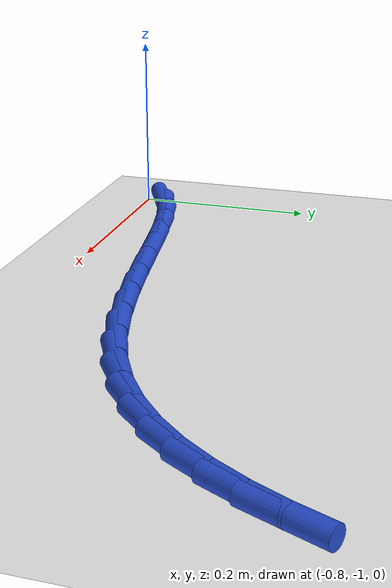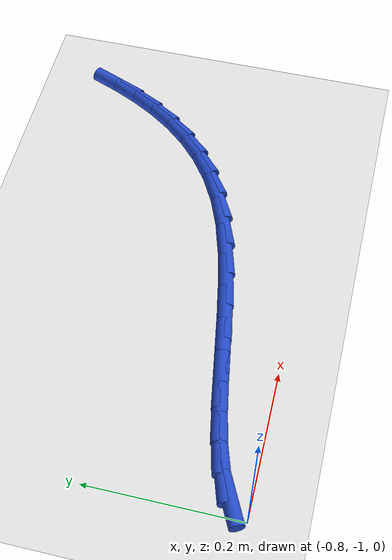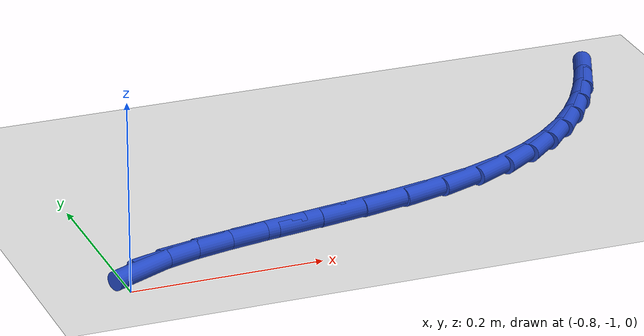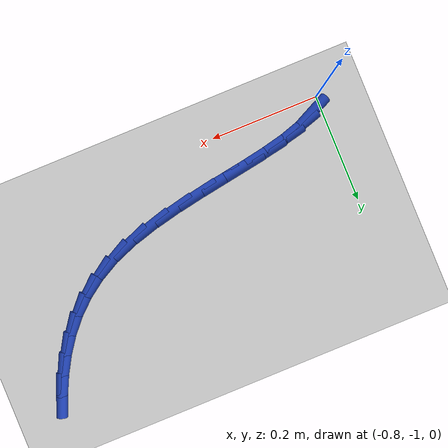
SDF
<sdf version="1.6">
 <world name="default">
  <model name="ground_plane">
   <static>1</static>
   <link name="link">
    <collision name="collision">
     <geometry><plane><normal>0 0 1</normal><size>100 100</size></plane></geometry>
     <surface><friction><ode><mu>100</mu><mu2>50</mu2></ode></friction></surface>
    </collision>
    <visual name="visual">
     <cast_shadows>0</cast_shadows>
     <geometry><plane><normal>0 0 1</normal><size>100 100</size></plane></geometry>
     <material>
      <script><uri>file://media/materials/scripts/gazebo.material</uri><name>Gazebo/WhiteGlow</name></script>
     </material>
    </visual>
   </link>
  </model>
  <model name="line">
   <link name="link_254">
    <pose>-0.7768781043772314 -0.9728549267879986 0.01 0 1.57 0.45088411573822135</pose>
    <collision name="collision">
     <geometry><cylinder><radius>0.01</radius><length>0.08</length></cylinder></geometry>
    </collision>
    <visual name="visual">
     <material>
      <script><name>Gazebo/Blue</name><uri>file://media/materials/scripts/gazebo.material</uri></script>
     </material>
     <geometry><cylinder><radius>0.01</radius><length>0.08</length></cylinder></geometry>
    </visual>
   </link>
   <link name="link_255">
    <pose>-0.7501456179289155 -0.959912501766332 0.01 0 1.57 0.3026047766894868</pose>
    <collision name="collision">
     <geometry><cylinder><radius>0.01</radius><length>0.08</length></cylinder></geometry>
    </collision>
    <visual name="visual">
     <material>
      <script><name>Gazebo/Blue</name><uri>file://media/materials/scripts/gazebo.material</uri></script>
     </material>
     <geometry><cylinder><radius>0.01</radius><length>0.08</length></cylinder></geometry>
    </visual>
   </link>
   <link name="link_256">
    <pose>-0.7160890984807753 -0.9492803090084928 0.01 0 1.57 0.22135112386396258</pose>
    <collision name="collision">
     <geometry><cylinder><radius>0.01</radius><length>0.08</length></cylinder></geometry>
    </collision>
    <visual name="visual">
     <material>
      <script><name>Gazebo/Blue</name><uri>file://media/materials/scripts/gazebo.material</uri></script>
     </material>
     <geometry><cylinder><radius>0.01</radius><length>0.08</length></cylinder></geometry>
    </visual>
   </link>
   <link name="link_257">
    <pose>-0.6761422918851169 -0.9402907380210408 0.01 0 1.57 0.17857186994799484</pose>
    <collision name="collision">
     <geometry><cylinder><radius>0.01</radius><length>0.08</length></cylinder></geometry>
    </collision>
    <visual name="visual">
     <material>
      <script><name>Gazebo/Blue</name><uri>file://media/materials/scripts/gazebo.material</uri></script>
     </material>
     <geometry><cylinder><radius>0.01</radius><length>0.08</length></cylinder></geometry>
    </visual>
   </link>
   <link name="link_258">
    <pose>-0.6317389439942481 -0.9322761783105372 0.01 0 1.57 0.16110034018738126</pose>
    <collision name="collision">
     <geometry><cylinder><radius>0.01</radius><length>0.08</length></cylinder></geometry>
    </collision>
    <visual name="visual">
     <material>
      <script><name>Gazebo/Blue</name><uri>file://media/materials/scripts/gazebo.material</uri></script>
     </material>
     <geometry><cylinder><radius>0.01</radius><length>0.08</length></cylinder></geometry>
    </visual>
   </link>
   <link name="link_259">
    <pose>-0.5843128006604758 -0.9245690193835424 0.01 0 1.57 0.16312662535529465</pose>
    <collision name="collision">
     <geometry><cylinder><radius>0.01</radius><length>0.08</length></cylinder></geometry>
    </collision>
    <visual name="visual">
     <material>
      <script><name>Gazebo/Blue</name><uri>file://media/materials/scripts/gazebo.material</uri></script>
     </material>
     <geometry><cylinder><radius>0.01</radius><length>0.08</length></cylinder></geometry>
    </visual>
   </link>
   <link name="link_260">
    <pose>-0.5352976077361069 -0.9165016507466174 0.01 0 1.57 0.18290515935895027</pose>
    <collision name="collision">
     <geometry><cylinder><radius>0.01</radius><length>0.08</length></cylinder></geometry>
    </collision>
    <visual name="visual">
     <material>
      <script><name>Gazebo/Blue</name><uri>file://media/materials/scripts/gazebo.material</uri></script>
     </material>
     <geometry><cylinder><radius>0.01</radius><length>0.08</length></cylinder></geometry>
    </visual>
   </link>
   <link name="link_261">
    <pose>-0.4861271110734484 -0.9074064619063225 0.01 0 1.57 0.22161069194695568</pose>
    <collision name="collision">
     <geometry><cylinder><radius>0.01</radius><length>0.08</length></cylinder></geometry>
    </collision>
    <visual name="visual">
     <material>
      <script><name>Gazebo/Blue</name><uri>file://media/materials/scripts/gazebo.material</uri></script>
     </material>
     <geometry><cylinder><radius>0.01</radius><length>0.08</length></cylinder></geometry>
    </visual>
   </link>
   <link name="link_262">
    <pose>-0.43823505652480765 -0.8966158423692187 0.01 0 1.57 0.28330854965891833</pose>
    <collision name="collision">
     <geometry><cylinder><radius>0.01</radius><length>0.08</length></cylinder></geometry>
    </collision>
    <visual name="visual">
     <material>
      <script><name>Gazebo/Blue</name><uri>file://media/materials/scripts/gazebo.material</uri></script>
     </material>
     <geometry><cylinder><radius>0.01</radius><length>0.08</length></cylinder></geometry>
    </visual>
   </link>
   <link name="link_263">
    <pose>-0.39305518994249156 -0.8834621816418666 0.01 0 1.57 0.37527288723966007</pose>
    <collision name="collision">
     <geometry><cylinder><radius>0.01</radius><length>0.08</length></cylinder></geometry>
    </collision>
    <visual name="visual">
     <material>
      <script><name>Gazebo/Blue</name><uri>file://media/materials/scripts/gazebo.material</uri></script>
     </material>
     <geometry><cylinder><radius>0.01</radius><length>0.08</length></cylinder></geometry>
    </visual>
   </link>
   <link name="link_264">
    <pose>-0.3520000428269094 -0.8672888439626464 0.01 0 1.57 0.4918642646686745</pose>
    <collision name="collision">
     <geometry><cylinder><radius>0.01</radius><length>0.08</length></cylinder></geometry>
    </collision>
    <visual name="visual">
     <material>
      <script><name>Gazebo/Blue</name><uri>file://media/materials/scripts/gazebo.material</uri></script>
     </material>
     <geometry><cylinder><radius>0.01</radius><length>0.08</length></cylinder></geometry>
    </visual>
   </link>
   <link name="link_265">
    <pose>-0.3157037977803337 -0.8478418535456265 0.01 0 1.57 0.6137346027957097</pose>
    <collision name="collision">
     <geometry><cylinder><radius>0.01</radius><length>0.08</length></cylinder></geometry>
    </collision>
    <visual name="visual">
     <material>
      <script><name>Gazebo/Blue</name><uri>file://media/materials/scripts/gazebo.material</uri></script>
     </material>
     <geometry><cylinder><radius>0.01</radius><length>0.08</length></cylinder></geometry>
    </visual>
   </link>
   <link name="link_266">
    <pose>-0.28381556529308205 -0.8253768378349873 0.01 0 1.57 0.7345894383982363</pose>
    <collision name="collision">
     <geometry><cylinder><radius>0.01</radius><length>0.08</length></cylinder></geometry>
    </collision>
    <visual name="visual">
     <material>
      <script><name>Gazebo/Blue</name><uri>file://media/materials/scripts/gazebo.material</uri></script>
     </material>
     <geometry><cylinder><radius>0.01</radius><length>0.08</length></cylinder></geometry>
    </visual>
   </link>
   <link name="link_267">
    <pose>-0.25592117648728824 -0.8001821603254373 0.01 0 1.57 0.8492423206986053</pose>
    <collision name="collision">
     <geometry><cylinder><radius>0.01</radius><length>0.08</length></cylinder></geometry>
    </collision>
    <visual name="visual">
     <material>
      <script><name>Gazebo/Blue</name><uri>file://media/materials/scripts/gazebo.material</uri></script>
     </material>
     <geometry><cylinder><radius>0.01</radius><length>0.08</length></cylinder></geometry>
    </visual>
   </link>
   <link name="link_268">
    <pose>-0.23160646248508424 -0.7725461845116843 0.01 0 1.57 0.9534109342986098</pose>
    <collision name="collision">
     <geometry><cylinder><radius>0.01</radius><length>0.08</length></cylinder></geometry>
    </collision>
    <visual name="visual">
     <material>
      <script><name>Gazebo/Blue</name><uri>file://media/materials/scripts/gazebo.material</uri></script>
     </material>
     <geometry><cylinder><radius>0.01</radius><length>0.08</length></cylinder></geometry>
    </visual>
   </link>
   <link name="link_269">
    <pose>-0.2104572544086026 -0.742757273888436 0.01 0 1.57 1.0442945844010947</pose>
    <collision name="collision">
     <geometry><cylinder><radius>0.01</radius><length>0.08</length></cylinder></geometry>
    </collision>
    <visual name="visual">
     <material>
      <script><name>Gazebo/Blue</name><uri>file://media/materials/scripts/gazebo.material</uri></script>
     </material>
     <geometry><cylinder><radius>0.01</radius><length>0.08</length></cylinder></geometry>
    </visual>
   </link>
   <link name="link_270">
    <pose>-0.19205938337997558 -0.7111037919504004 0.01 0 1.57 1.1205783870282375</pose>
    <collision name="collision">
     <geometry><cylinder><radius>0.01</radius><length>0.08</length></cylinder></geometry>
    </collision>
    <visual name="visual">
     <material>
      <script><name>Gazebo/Blue</name><uri>file://media/materials/scripts/gazebo.material</uri></script>
     </material>
     <geometry><cylinder><radius>0.01</radius><length>0.08</length></cylinder></geometry>
    </visual>
   </link>
   <link name="link_271">
    <pose>-0.17599868052133538 -0.6778741021922852 0.01 0 1.57 1.1820584103639107</pose>
    <collision name="collision">
     <geometry><cylinder><radius>0.01</radius><length>0.08</length></cylinder></geometry>
    </collision>
    <visual name="visual">
     <material>
      <script><name>Gazebo/Blue</name><uri>file://media/materials/scripts/gazebo.material</uri></script>
     </material>
     <geometry><cylinder><radius>0.01</radius><length>0.08</length></cylinder></geometry>
    </visual>
   </link>
  </model>
 </world>
</sdf>
